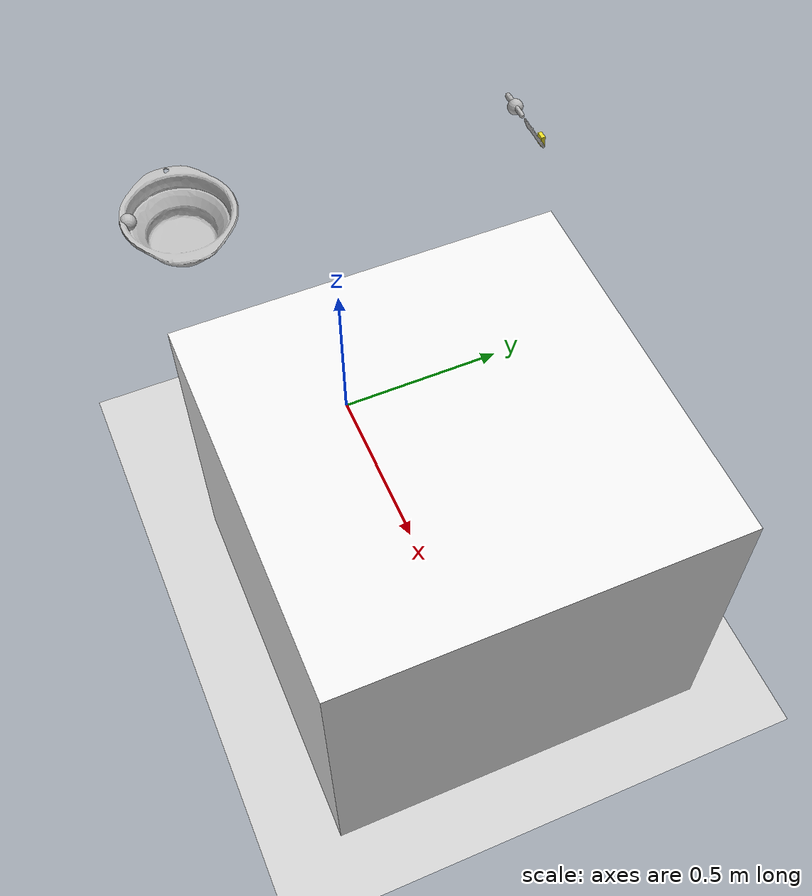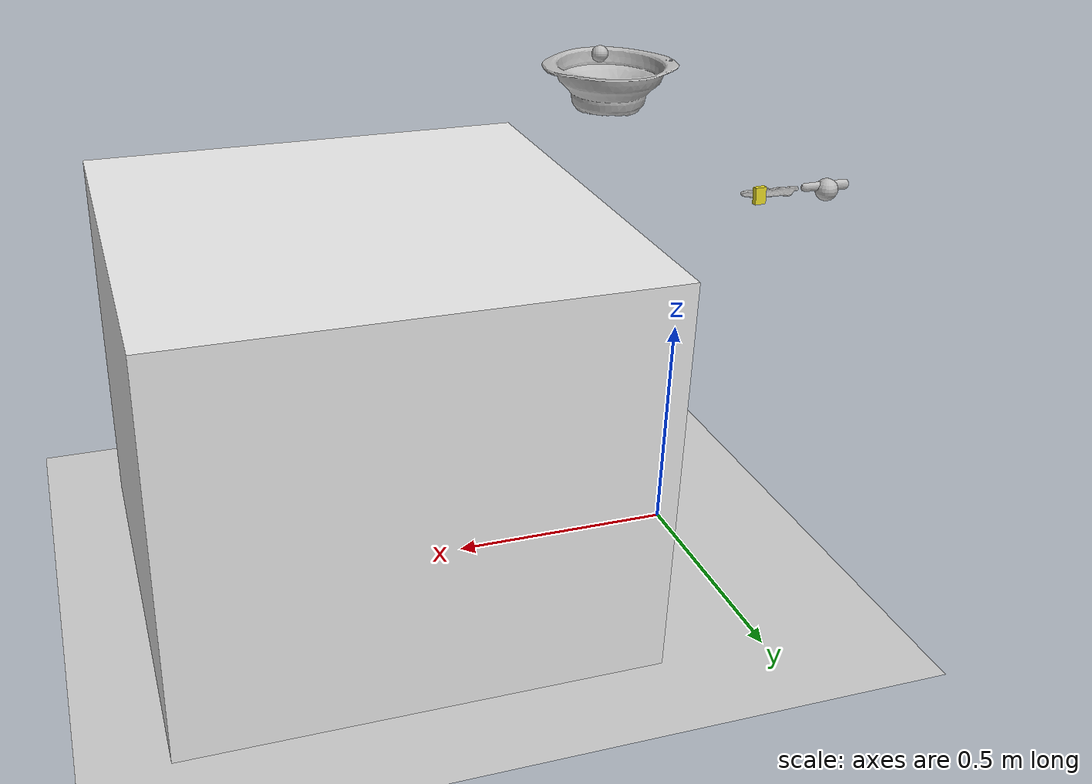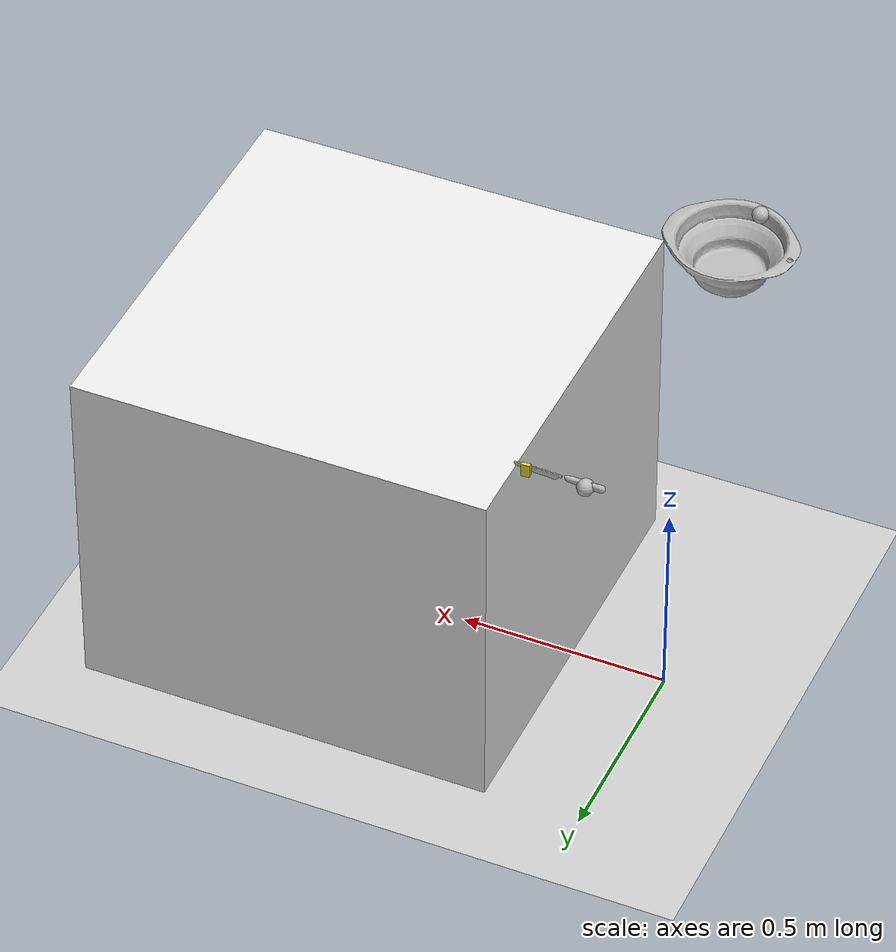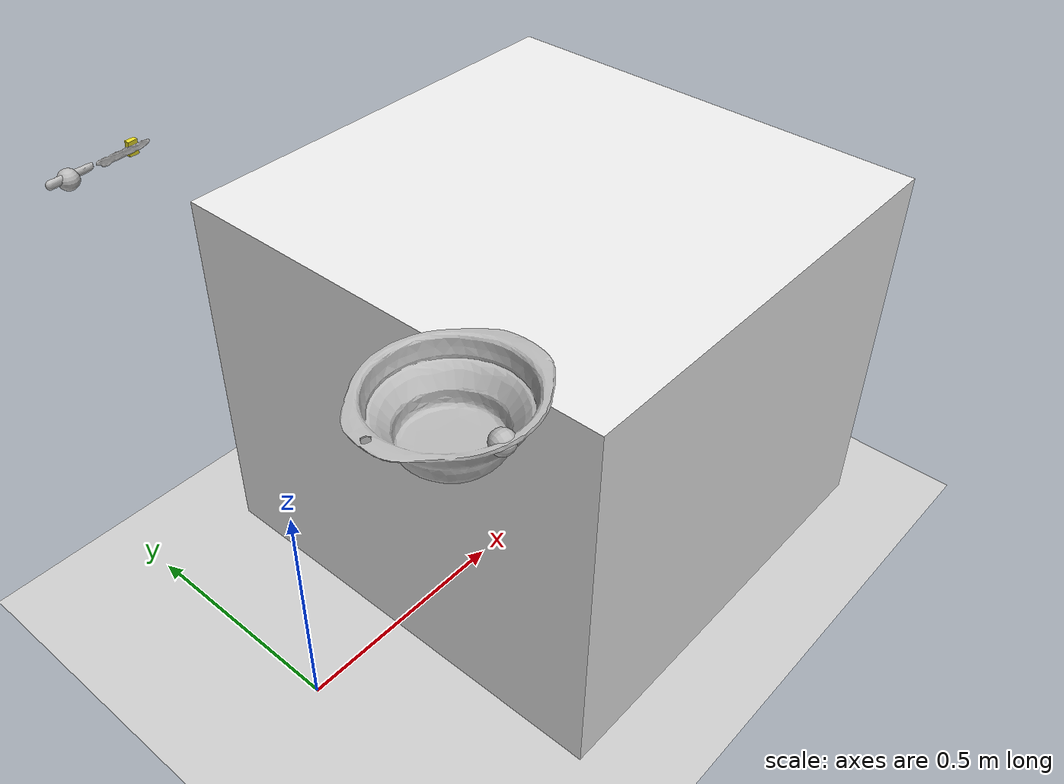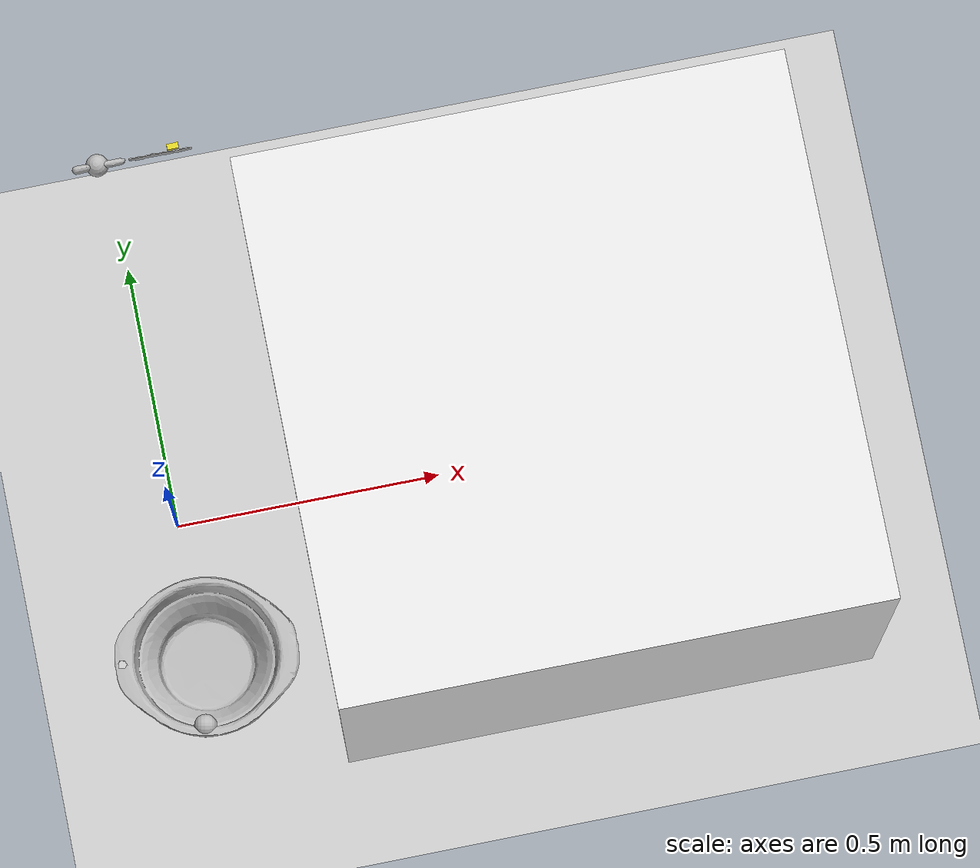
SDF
<?xml version='1.0'?>
<sdf version="1.6">
    <world name="b_big_bowl_b_table_knife_p">

        <include>
            <uri>model://sun</uri>
        </include>

        <include>
            <uri>model://ground_plane</uri>
        </include>

        <include>
            <uri>model://b_table_knife</uri>
            <pose>0.060878 0.497562 1.005864 1.616805 0 0</pose>
        </include>

        <include>
            <uri>model://butter_box</uri>
            <pose>0.135223 0.505221 1.004970 0.274247 1.507719 1.875657</pose>
            <plugin name="stick" filename="libStickPlugin.so">
              <parentLinkName>link</parentLinkName>
              <childLinkName>b_table_knife::link</childLinkName>
              <force>5</force>
            </plugin>
        </include>

        <include>
            <uri>model://b_big_bowl</uri>
            <pose>0.024164 -0.383989 0.959287 -0.017186 -0.000884 -0.101566</pose>
        </include>

        <include>
            <uri>model://b_kitchen_isle</uri>
            <pose>0.729232 0 0 0 0 0</pose>
        </include>

        <!-- Left Gripper -->
        <include>
            <uri>model://gripper</uri>
            <name>left_ee</name>
            <pose>0 0.5 1 0 0 0</pose>

            <plugin name="l_position_controller" filename="libposition_controller_plugin.so">
              <linkName>link</linkName>
              <referenceFrameName>base_link</referenceFrameName>
              <targetFrameName>l_gripper_tool_frame</targetFrameName>
            </plugin>

            <plugin name="l_grip" filename="libQGripPlugin.so">
              <parentLinkName>link</parentLinkName>
              <childLinkName>b_table_knife::link</childLinkName>
              <relativeTranslation>0.0384850800037 -0.00200759898871 0.0044107735157</relativeTranslation>
              <relativeRotationXYZW>-0.694968938828 0.0 0.0 0.719039916992</relativeRotationXYZW>
            </plugin>
        </include>

        <!-- Right Gripper -->
        <include>
            <uri>model://gripper</uri>
            <name>right_ee</name>
            <pose>0 -0.5 1 1.547368 1.402341 1.343703</pose>

            <plugin name="r_position_controller" filename="libposition_controller_plugin.so">
              <linkName>link</linkName>
              <referenceFrameName>base_link</referenceFrameName>
              <targetFrameName>r_gripper_tool_frame</targetFrameName>
            </plugin>

            <plugin name="r_grip" filename="libQGripPlugin.so">
              <parentLinkName>link</parentLinkName>
              <childLinkName>b_big_bowl::link</childLinkName>
              <relativeTranslation>0.0698283538222 -0.101200096309 -0.00832558982074</relativeTranslation>
              <relativeRotationXYZW>0.0882896855474 -0.714526772499 0.152498945594 0.677053391933</relativeRotationXYZW>
            </plugin>
        </include>

        <plugin name="feature_visualization_plugin" filename="libgiskard_visualization_plugin.so"></plugin>

        <gui>
            <camera name='user_camera'>
                <pose>1.700789 1.175709 1.670612 0 0.375643 -2.675000</pose>
                <view_controller>orbit</view_controller>
            </camera>
        </gui>

    </world>
</sdf>

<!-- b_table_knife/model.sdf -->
<sdf version='1.6'>
	<model name='b_table_knife'>
		<static>false</static>
		<pose>0 0 0 0 0 0</pose>

		<link name='link'>
			<inertial>
			  <mass>0.1</mass>
			  <pose>-8.8541e-06 -4.0274e-05 -0.00010513 0 0 0</pose>
			  <inertia>
				  <ixx>0.000005</ixx>
				  <iyy>0.0002433333</iyy>
				  <izz>0.0002433333</izz>
			  </inertia>
			</inertial>
			<sensor name="tool_contact_sensor" type="contact">
				<always_on>true</always_on>
				<update_rate>30.0</update_rate>
				<contact>
					<collision>collision</collision>
				</contact>
				<plugin name="tool_bumper" filename="libgazebo_ros_bumper.so">
					<bumperTopicName>tool_contact_sensor_state</bumperTopicName>
					<frameName>world</frameName>
				</plugin>
			</sensor>
			<collision name='collision'>
				<geometry>
					<mesh>
						<uri>model://b_table_knife/b_table_knife.dae</uri>
					</mesh>
				</geometry>
				<surface>
					<friction>
						<ode>
							<mu>0.2</mu>
							<mu2>0.2</mu2>
						</ode>
					</friction>
				</surface>
			</collision>
			<visual name='visual'>
				<geometry>
					<mesh>
						<uri>model://b_table_knife/b_table_knife.dae</uri>
					</mesh>
				</geometry>
			</visual>
		</link>
	</model>
</sdf>

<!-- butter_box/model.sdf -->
<sdf version='1.6'>
    <model name='butter_box'>
        <static>false</static>
        <pose>0 0 0 0 0 0</pose>
        <link name='link'>
            <pose>0 0 0 0 0 0</pose>
            <inertial>
                <mass>0.001</mass>
                <pose>0 0 0 0 0 0</pose>
                <inertia>
                    <ixx>0.00000004167</ixx>
                    <iyy>0.00000008333</iyy>
                    <izz>0.00000010833</izz>
                    <ixy>0</ixy>
                    <ixz>0</ixz>
                    <iyz>0</iyz>
                </inertia>
            </inertial>
            <collision name='collision'>
                <geometry>
                    <box>
                        <size>0.03 0.02 0.01</size>
                    </box>
                </geometry>
                <surface>
                    <friction>
                        <ode>
                            <mu>0.2</mu>
                            <mu2>0.2</mu2>
                        </ode>
                    </friction>
                </surface>
            </collision>
            <visual name='visual'>
                <geometry>
                    <box>
                        <size>0.03 0.02 0.01</size>
                    </box>
                </geometry>
                <material>
                    <script>
                        <name>Gazebo/Yellow</name>
                        <uri>file://media/materials/scripts/gazebo.material</uri>
                    </script>
                </material>
            </visual>
        </link>
    </model>
</sdf>

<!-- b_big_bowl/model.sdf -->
<sdf version='1.6'>
	<model name='b_big_bowl'>
		<static>false</static>
		<pose>0 0 0 0 0 0</pose>

		<link name='link'>
			<inertial>
			<mass>0.35</mass>
			<pose>-0.0022966 -0.0039142 0.0041527 0 0 0</pose>
				<inertia>
					<ixx>0.0009479167</ixx>
					<iyy>0.0009479167</iyy>
					<izz>0.00175</izz>
				</inertia>
			</inertial>
			<collision name='collision'>
				<geometry>
					<mesh>
						<uri>model://b_big_bowl/b_big_bowl.dae</uri>
					</mesh>
				</geometry>
				<surface>
					<friction>
						<ode>
							<mu>0.2</mu>
							<mu2>0.2</mu2>
						</ode>
					</friction>
				</surface>
			</collision>
			<visual name='visual'>
				<geometry>
					<mesh>
						<uri>model://b_big_bowl/b_big_bowl.dae</uri>
					</mesh>
				</geometry>
			</visual>
		</link>
	</model>
</sdf>

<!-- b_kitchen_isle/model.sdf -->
<sdf version='1.6'>
    <model name='b_kitchen_isle'>
        <static>false</static>

        <pose>0 0 0 0 0 0</pose>

        <link name='link'>
            <pose>0 0 0.425 0 0 0</pose>

            <gravity>false</gravity>

           <collision name='collision'>
               <geometry>
                   <box>
                        <size>1.0 1.0 0.85</size>
                    </box>
               </geometry>
           </collision>

            <visual name='visual'>
                <geometry>
                   <box>
                        <size>1.0 1.0 0.85</size>
                    </box>
               </geometry>
               <material>
                    <script>
                        <name>Gazebo/White</name>
                        <uri>file://media/materials/scripts/gazebo.material</uri>
                    </script>
                </material>
            </visual>

        </link>
    </model>
</sdf>

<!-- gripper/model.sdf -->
<sdf version='1.6'>
    <model name='gripper'>
        <static>false</static>
        <allow_auto_disable>false</allow_auto_disable>

        <pose>0 0 0 0 0 0</pose>

        <link name='link'>
            <pose>0 0 0 0 0 0</pose>

            <gravity>false</gravity>

            <visual name='visual'>
                <geometry>
                    <sphere>
                        <radius>0.02</radius>
                    </sphere>
                </geometry>
            </visual>

        </link>
    </model>
</sdf>
